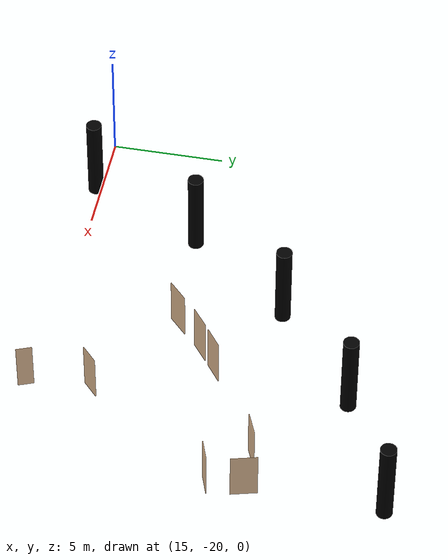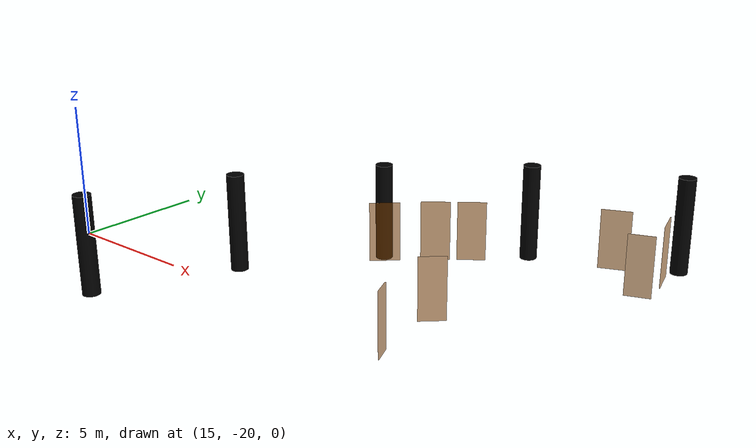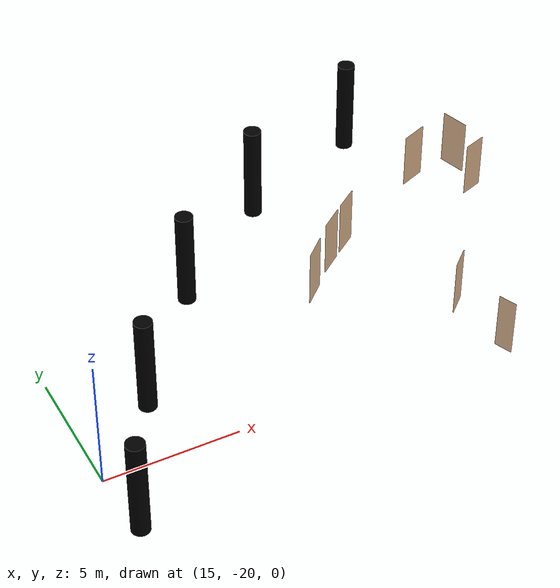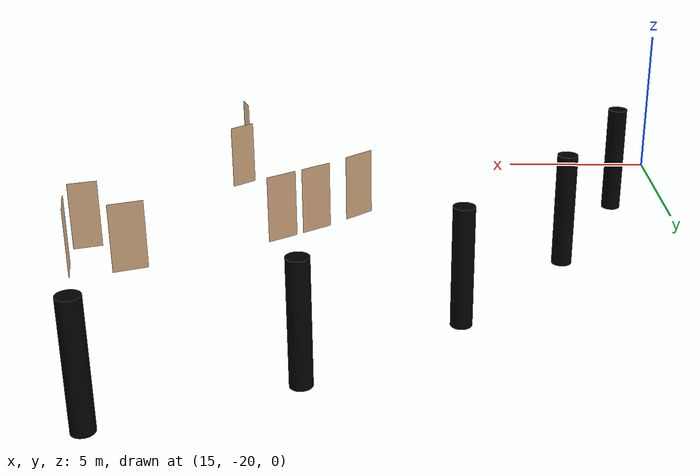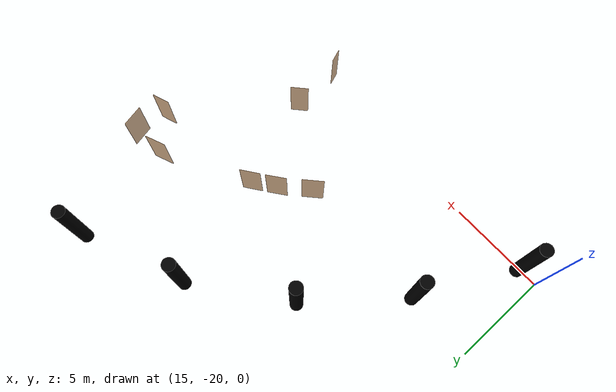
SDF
<sdf version="1.7">
 <world name="world">
  <model name="D25">
   <pose>32.3765 -10.4329 0 0 0 -2.75199</pose>
   <link name="right">
    <pose>0 0 1.11 0 -0 0</pose>
    <visual name="right_visual">
     <geometry><box><size>1.08305 0.03 2.2</size></box></geometry>
     <material><ambient>0.5 0.25 0 0.6</ambient><diffuse>0.5 0.25 0 0.6</diffuse></material>
    </visual>
    <collision name="right_collision">
     <geometry><box><size>1.08305 0.03 2.2</size></box></geometry>
     <surface><contact><collide_bitmask>2</collide_bitmask></contact></surface>
    </collision>
    <inertial>
     <mass>50</mass>
     <inertia><ixx>20.1704</ixx><iyy>25.0542</iyy><izz>4.89127</izz><ixy>0</ixy><ixz>0</ixz><iyz>0</iyz></inertia>
    </inertial>
   </link>
   <joint name="right_joint" type="revolute">
    <parent>world</parent>
    <child>right</child>
    <axis>
     <xyz>0 0 -1</xyz>
     <limit><lower>0</lower><upper>1.57</upper></limit>
     <dynamics><spring_reference>0</spring_reference><spring_stiffness>0</spring_stiffness></dynamics>
    </axis>
    <pose>0.546527 0 0 0 -0 0</pose>
   </joint>
   <plugin name="door_D25" filename="libdoor.so">
    <v_max_door>0.5</v_max_door>
    <a_max_door>0.3</a_max_door>
    <a_nom_door>0.15</a_nom_door>
    <dx_min_door>0.01</dx_min_door>
    <f_max_door>500.0</f_max_door>
    <door name="D25" type="SwingDoor" left_joint_name="empty_joint" right_joint_name="right_joint"/>
   </plugin>
  </model>
  <model name="D26">
   <pose>34.1187 -12.0597 0 0 0 -2.80194</pose>
   <link name="right">
    <pose>0 0 1.11 0 -0 0</pose>
    <visual name="right_visual">
     <geometry><box><size>0.915237 0.03 2.2</size></box></geometry>
     <material><ambient>0.5 0.25 0 0.6</ambient><diffuse>0.5 0.25 0 0.6</diffuse></material>
    </visual>
    <collision name="right_collision">
     <geometry><box><size>0.915237 0.03 2.2</size></box></geometry>
     <surface><contact><collide_bitmask>2</collide_bitmask></contact></surface>
    </collision>
    <inertial>
     <mass>50</mass>
     <inertia><ixx>20.1704</ixx><iyy>23.6569</iyy><izz>3.49399</izz><ixy>0</ixy><ixz>0</ixz><iyz>0</iyz></inertia>
    </inertial>
   </link>
   <joint name="right_joint" type="revolute">
    <parent>world</parent>
    <child>right</child>
    <axis>
     <xyz>0 0 1</xyz>
     <limit><lower>0</lower><upper>1.57</upper></limit>
     <dynamics><spring_reference>0</spring_reference><spring_stiffness>0</spring_stiffness></dynamics>
    </axis>
    <pose>0.462618 0 0 0 -0 0</pose>
   </joint>
   <plugin name="door_D26" filename="libdoor.so">
    <v_max_door>0.5</v_max_door>
    <a_max_door>0.3</a_max_door>
    <a_nom_door>0.15</a_nom_door>
    <dx_min_door>0.01</dx_min_door>
    <f_max_door>500.0</f_max_door>
    <door name="D26" type="SwingDoor" left_joint_name="empty_joint" right_joint_name="right_joint"/>
   </plugin>
  </model>
  <model name="D27">
   <pose>34.2491 -10.3948 0 0 -0 1.83761</pose>
   <link name="right">
    <pose>0 0 1.11 0 -0 0</pose>
    <visual name="right_visual">
     <geometry><box><size>1.1359 0.03 2.2</size></box></geometry>
     <material><ambient>0.5 0.25 0 0.6</ambient><diffuse>0.5 0.25 0 0.6</diffuse></material>
    </visual>
    <collision name="right_collision">
     <geometry><box><size>1.1359 0.03 2.2</size></box></geometry>
     <surface><contact><collide_bitmask>2</collide_bitmask></contact></surface>
    </collision>
    <inertial>
     <mass>50</mass>
     <inertia><ixx>20.1704</ixx><iyy>25.5428</iyy><izz>5.37987</izz><ixy>0</ixy><ixz>0</ixz><iyz>0</iyz></inertia>
    </inertial>
   </link>
   <joint name="right_joint" type="revolute">
    <parent>world</parent>
    <child>right</child>
    <axis>
     <xyz>0 0 1</xyz>
     <limit><lower>0</lower><upper>1.57</upper></limit>
     <dynamics><spring_reference>0</spring_reference><spring_stiffness>0</spring_stiffness></dynamics>
    </axis>
    <pose>0.57295 0 0 0 -0 0</pose>
   </joint>
   <plugin name="door_D27" filename="libdoor.so">
    <v_max_door>0.5</v_max_door>
    <a_max_door>0.3</a_max_door>
    <a_nom_door>0.15</a_nom_door>
    <dx_min_door>0.01</dx_min_door>
    <f_max_door>500.0</f_max_door>
    <door name="D27" type="SwingDoor" left_joint_name="empty_joint" right_joint_name="right_joint"/>
   </plugin>
  </model>
  <model name="D31">
   <pose>27.9754 -12.8885 0 -0 -0 -2.50713</pose>
   <link name="right">
    <pose>0 0 1.11 0 -0 0</pose>
    <visual name="right_visual">
     <geometry><box><size>1.03334 0.03 2.2</size></box></geometry>
     <material><ambient>0.5 0.25 0 0.6</ambient><diffuse>0.5 0.25 0 0.6</diffuse></material>
    </visual>
    <collision name="right_collision">
     <geometry><box><size>1.03334 0.03 2.2</size></box></geometry>
     <surface><contact><collide_bitmask>2</collide_bitmask></contact></surface>
    </collision>
    <inertial>
     <mass>50</mass>
     <inertia><ixx>20.1704</ixx><iyy>24.6158</iyy><izz>4.45285</izz><ixy>0</ixy><ixz>0</ixz><iyz>0</iyz></inertia>
    </inertial>
   </link>
   <joint name="right_joint" type="revolute">
    <parent>world</parent>
    <child>right</child>
    <axis>
     <xyz>0 0 -1</xyz>
     <limit><lower>0</lower><upper>1.57</upper></limit>
     <dynamics><spring_reference>0</spring_reference><spring_stiffness>0</spring_stiffness></dynamics>
    </axis>
    <pose>0.521668 0 0 0 -0 0</pose>
   </joint>
   <plugin name="door_D31" filename="libdoor.so">
    <v_max_door>0.5</v_max_door>
    <a_max_door>0.3</a_max_door>
    <a_nom_door>0.15</a_nom_door>
    <dx_min_door>0.01</dx_min_door>
    <f_max_door>500.0</f_max_door>
    <door name="D31" type="SwingDoor" left_joint_name="empty_joint" right_joint_name="right_joint"/>
   </plugin>
  </model>
  <model name="D32">
   <pose>26.9386 -13.6668 0 0 -0 -2.48438</pose>
   <link name="right">
    <pose>0 0 1.11 0 -0 0</pose>
    <visual name="right_visual">
     <geometry><box><size>1.05854 0.03 2.2</size></box></geometry>
     <material><ambient>0.5 0.25 0 0.6</ambient><diffuse>0.5 0.25 0 0.6</diffuse></material>
    </visual>
    <collision name="right_collision">
     <geometry><box><size>1.05854 0.03 2.2</size></box></geometry>
     <surface><contact><collide_bitmask>2</collide_bitmask></contact></surface>
    </collision>
    <inertial>
     <mass>50</mass>
     <inertia><ixx>20.1704</ixx><iyy>24.8354</iyy><izz>4.67253</izz><ixy>0</ixy><ixz>0</ixz><iyz>0</iyz></inertia>
    </inertial>
   </link>
   <joint name="right_joint" type="revolute">
    <parent>world</parent>
    <child>right</child>
    <axis>
     <xyz>0 0 1</xyz>
     <limit><lower>0</lower><upper>1.57</upper></limit>
     <dynamics><spring_reference>0</spring_reference><spring_stiffness>0</spring_stiffness></dynamics>
    </axis>
    <pose>0.53427 0 0 0 -0 0</pose>
   </joint>
   <plugin name="door_D32" filename="libdoor.so">
    <v_max_door>0.5</v_max_door>
    <a_max_door>0.3</a_max_door>
    <a_nom_door>0.15</a_nom_door>
    <dx_min_door>0.01</dx_min_door>
    <f_max_door>500.0</f_max_door>
    <door name="D32" type="SwingDoor" left_joint_name="empty_joint" right_joint_name="right_joint"/>
   </plugin>
  </model>
  <model name="D33">
   <pose>25.5963 -14.8888 -0 0 -0 0.750934</pose>
   <link name="right">
    <pose>0 0 1.11 0 -0 0</pose>
    <visual name="right_visual">
     <geometry><box><size>1.09741 0.03 2.2</size></box></geometry>
     <material><ambient>0.5 0.25 0 0.6</ambient><diffuse>0.5 0.25 0 0.6</diffuse></material>
    </visual>
    <collision name="right_collision">
     <geometry><box><size>1.09741 0.03 2.2</size></box></geometry>
     <surface><contact><collide_bitmask>2</collide_bitmask></contact></surface>
    </collision>
    <inertial>
     <mass>50</mass>
     <inertia><ixx>20.1704</ixx><iyy>25.1846</iyy><izz>5.02167</izz><ixy>0</ixy><ixz>0</ixz><iyz>0</iyz></inertia>
    </inertial>
   </link>
   <joint name="right_joint" type="revolute">
    <parent>world</parent>
    <child>right</child>
    <axis>
     <xyz>0 0 1</xyz>
     <limit><lower>0</lower><upper>1.57</upper></limit>
     <dynamics><spring_reference>0</spring_reference><spring_stiffness>0</spring_stiffness></dynamics>
    </axis>
    <pose>0.553703 0 0 0 -0 0</pose>
   </joint>
   <plugin name="door_D33" filename="libdoor.so">
    <v_max_door>0.5</v_max_door>
    <a_max_door>0.3</a_max_door>
    <a_nom_door>0.15</a_nom_door>
    <dx_min_door>0.01</dx_min_door>
    <f_max_door>500.0</f_max_door>
    <door name="D33" type="SwingDoor" left_joint_name="empty_joint" right_joint_name="right_joint"/>
   </plugin>
  </model>
  <model name="D34">
   <pose>29.9039 -17.792 0 0 0 -2.39809</pose>
   <link name="right">
    <pose>0 0 1.11 0 -0 0</pose>
    <visual name="right_visual">
     <geometry><box><size>0.925938 0.03 2.2</size></box></geometry>
     <material><ambient>0.5 0.25 0 0.6</ambient><diffuse>0.5 0.25 0 0.6</diffuse></material>
    </visual>
    <collision name="right_collision">
     <geometry><box><size>0.925938 0.03 2.2</size></box></geometry>
     <surface><contact><collide_bitmask>2</collide_bitmask></contact></surface>
    </collision>
    <inertial>
     <mass>50</mass>
     <inertia><ixx>20.1704</ixx><iyy>23.739</iyy><izz>3.57609</izz><ixy>0</ixy><ixz>0</ixz><iyz>0</iyz></inertia>
    </inertial>
   </link>
   <joint name="right_joint" type="revolute">
    <parent>world</parent>
    <child>right</child>
    <axis>
     <xyz>0 0 1</xyz>
     <limit><lower>0</lower><upper>1.57</upper></limit>
     <dynamics><spring_reference>0</spring_reference><spring_stiffness>0</spring_stiffness></dynamics>
    </axis>
    <pose>0.467969 0 0 0 -0 0</pose>
   </joint>
   <plugin name="door_D34" filename="libdoor.so">
    <v_max_door>0.5</v_max_door>
    <a_max_door>0.3</a_max_door>
    <a_nom_door>0.15</a_nom_door>
    <dx_min_door>0.01</dx_min_door>
    <f_max_door>500.0</f_max_door>
    <door name="D34" type="SwingDoor" left_joint_name="empty_joint" right_joint_name="right_joint"/>
   </plugin>
  </model>
  <model name="D36">
   <pose>30.1255 -20.5368 0 0 0 -1.19026</pose>
   <link name="right">
    <pose>0 0 1.11 0 -0 0</pose>
    <visual name="right_visual">
     <geometry><box><size>0.694175 0.03 2.2</size></box></geometry>
     <material><ambient>0.5 0.25 0 0.6</ambient><diffuse>0.5 0.25 0 0.6</diffuse></material>
    </visual>
    <collision name="right_collision">
     <geometry><box><size>0.694175 0.03 2.2</size></box></geometry>
     <surface><contact><collide_bitmask>2</collide_bitmask></contact></surface>
    </collision>
    <inertial>
     <mass>50</mass>
     <inertia><ixx>20.1704</ixx><iyy>22.1745</iyy><izz>2.01158</izz><ixy>0</ixy><ixz>0</ixz><iyz>0</iyz></inertia>
    </inertial>
   </link>
   <joint name="right_joint" type="revolute">
    <parent>world</parent>
    <child>right</child>
    <axis>
     <xyz>0 0 -1</xyz>
     <limit><lower>0</lower><upper>1.57</upper></limit>
     <dynamics><spring_reference>0</spring_reference><spring_stiffness>0</spring_stiffness></dynamics>
    </axis>
    <pose>0.352087 0 0 0 -0 0</pose>
   </joint>
   <plugin name="door_D36" filename="libdoor.so">
    <v_max_door>0.5</v_max_door>
    <a_max_door>0.3</a_max_door>
    <a_nom_door>0.15</a_nom_door>
    <dx_min_door>0.01</dx_min_door>
    <f_max_door>500.0</f_max_door>
    <door name="D36" type="SwingDoor" left_joint_name="empty_joint" right_joint_name="right_joint"/>
   </plugin>
  </model>
  <model name="CylinderBlock_24">
   <link name="link">
    <inertial>
     <mass>1</mass>
     <inertia><ixx>1</ixx><ixy>0</ixy><ixz>0</ixz><iyy>1</iyy><iyz>0</iyz><izz>1</izz></inertia>
    </inertial>
    <visual name="visual">
     <geometry><cylinder><radius>0.35</radius><length>4.0</length></cylinder></geometry>
     <material>
      <shader type="pixel"><normal_map>__default__</normal_map></shader>
      <script><name>ModelPreview_1::link::visual_MATERIAL_</name><uri>__default__</uri></script>
      <ambient>0 0 0 1</ambient>
      <diffuse>0 0 0 1</diffuse>
      <specular>0 0 0 1</specular>
      <emissive>0 0 0 1</emissive>
     </material>
    </visual>
    <collision name="collision">
     <geometry><cylinder><radius>0.35</radius><length>4.0</length></cylinder></geometry>
     <surface>
      <friction>
       <ode><mu>1</mu><mu2>1</mu2><fdir1>0 0 0</fdir1><slip1>0</slip1><slip2>0</slip2></ode>
       <torsional>
        <coefficient>1</coefficient>
        <patch_radius>0</patch_radius>
        <surface_radius>0</surface_radius>
        <use_patch_radius>1</use_patch_radius>
        <ode><slip>0</slip></ode>
       </torsional>
      </friction>
      <bounce><restitution_coefficient>0</restitution_coefficient><threshold>1e+06</threshold></bounce>
      <contact>
       <collide_without_contact>0</collide_without_contact>
       <collide_without_contact_bitmask>1</collide_without_contact_bitmask>
       <collide_bitmask>1</collide_bitmask>
       <ode>
        <soft_cfm>0</soft_cfm>
        <soft_erp>0.2</soft_erp>
        <kp>1e+13</kp>
        <kd>1</kd>
        <max_vel>0.01</max_vel>
        <min_depth>0</min_depth>
       </ode>
       <bullet>
        <split_impulse>1</split_impulse>
        <split_impulse_penetration_threshold>-0.01</split_impulse_penetration_threshold>
        <soft_cfm>0</soft_cfm>
        <soft_erp>0.2</soft_erp>
        <kp>1e+13</kp>
        <kd>1</kd>
       </bullet>
      </contact>
     </surface>
    </collision>
   </link>
   <static>1</static>
   <pose>32.4854 -4.77215 0 0 -0 0</pose>
  </model>
  <model name="CylinderBlock_25">
   <link name="link">
    <inertial>
     <mass>1</mass>
     <inertia><ixx>1</ixx><ixy>0</ixy><ixz>0</ixz><iyy>1</iyy><iyz>0</iyz><izz>1</izz></inertia>
    </inertial>
    <visual name="visual">
     <geometry><cylinder><radius>0.35</radius><length>4.0</length></cylinder></geometry>
     <material>
      <shader type="pixel"><normal_map>__default__</normal_map></shader>
      <script><name>ModelPreview_1::link::visual_MATERIAL_</name><uri>__default__</uri></script>
      <ambient>0 0 0 1</ambient>
      <diffuse>0 0 0 1</diffuse>
      <specular>0 0 0 1</specular>
      <emissive>0 0 0 1</emissive>
     </material>
    </visual>
    <collision name="collision">
     <geometry><cylinder><radius>0.35</radius><length>4.0</length></cylinder></geometry>
     <surface>
      <friction>
       <ode><mu>1</mu><mu2>1</mu2><fdir1>0 0 0</fdir1><slip1>0</slip1><slip2>0</slip2></ode>
       <torsional>
        <coefficient>1</coefficient>
        <patch_radius>0</patch_radius>
        <surface_radius>0</surface_radius>
        <use_patch_radius>1</use_patch_radius>
        <ode><slip>0</slip></ode>
       </torsional>
      </friction>
      <bounce><restitution_coefficient>0</restitution_coefficient><threshold>1e+06</threshold></bounce>
      <contact>
       <collide_without_contact>0</collide_without_contact>
       <collide_without_contact_bitmask>1</collide_without_contact_bitmask>
       <collide_bitmask>1</collide_bitmask>
       <ode>
        <soft_cfm>0</soft_cfm>
        <soft_erp>0.2</soft_erp>
        <kp>1e+13</kp>
        <kd>1</kd>
        <max_vel>0.01</max_vel>
        <min_depth>0</min_depth>
       </ode>
       <bullet>
        <split_impulse>1</split_impulse>
        <split_impulse_penetration_threshold>-0.01</split_impulse_penetration_threshold>
        <soft_cfm>0</soft_cfm>
        <soft_erp>0.2</soft_erp>
        <kp>1e+13</kp>
        <kd>1</kd>
       </bullet>
      </contact>
     </surface>
    </collision>
   </link>
   <static>1</static>
   <pose>26.9406 -7.17598 0 0 -0 0</pose>
  </model>
  <model name="CylinderBlock_26">
   <link name="link">
    <inertial>
     <mass>1</mass>
     <inertia><ixx>1</ixx><ixy>0</ixy><ixz>0</ixz><iyy>1</iyy><iyz>0</iyz><izz>1</izz></inertia>
    </inertial>
    <visual name="visual">
     <geometry><cylinder><radius>0.35</radius><length>4.0</length></cylinder></geometry>
     <material>
      <shader type="pixel"><normal_map>__default__</normal_map></shader>
      <script><name>ModelPreview_1::link::visual_MATERIAL_</name><uri>__default__</uri></script>
      <ambient>0 0 0 1</ambient>
      <diffuse>0 0 0 1</diffuse>
      <specular>0 0 0 1</specular>
      <emissive>0 0 0 1</emissive>
     </material>
    </visual>
    <collision name="collision">
     <geometry><cylinder><radius>0.35</radius><length>4.0</length></cylinder></geometry>
     <surface>
      <friction>
       <ode><mu>1</mu><mu2>1</mu2><fdir1>0 0 0</fdir1><slip1>0</slip1><slip2>0</slip2></ode>
       <torsional>
        <coefficient>1</coefficient>
        <patch_radius>0</patch_radius>
        <surface_radius>0</surface_radius>
        <use_patch_radius>1</use_patch_radius>
        <ode><slip>0</slip></ode>
       </torsional>
      </friction>
      <bounce><restitution_coefficient>0</restitution_coefficient><threshold>1e+06</threshold></bounce>
      <contact>
       <collide_without_contact>0</collide_without_contact>
       <collide_without_contact_bitmask>1</collide_without_contact_bitmask>
       <collide_bitmask>1</collide_bitmask>
       <ode>
        <soft_cfm>0</soft_cfm>
        <soft_erp>0.2</soft_erp>
        <kp>1e+13</kp>
        <kd>1</kd>
        <max_vel>0.01</max_vel>
        <min_depth>0</min_depth>
       </ode>
       <bullet>
        <split_impulse>1</split_impulse>
        <split_impulse_penetration_threshold>-0.01</split_impulse_penetration_threshold>
        <soft_cfm>0</soft_cfm>
        <soft_erp>0.2</soft_erp>
        <kp>1e+13</kp>
        <kd>1</kd>
       </bullet>
      </contact>
     </surface>
    </collision>
   </link>
   <static>1</static>
   <pose>22.2541 -10.8598 0 0 -0 0</pose>
  </model>
  <model name="CylinderBlock_27">
   <link name="link">
    <inertial>
     <mass>1</mass>
     <inertia><ixx>1</ixx><ixy>0</ixy><ixz>0</ixz><iyy>1</iyy><iyz>0</iyz><izz>1</izz></inertia>
    </inertial>
    <visual name="visual">
     <geometry><cylinder><radius>0.35</radius><length>4.0</length></cylinder></geometry>
     <material>
      <shader type="pixel"><normal_map>__default__</normal_map></shader>
      <script><name>ModelPreview_1::link::visual_MATERIAL_</name><uri>__default__</uri></script>
      <ambient>0 0 0 1</ambient>
      <diffuse>0 0 0 1</diffuse>
      <specular>0 0 0 1</specular>
      <emissive>0 0 0 1</emissive>
     </material>
    </visual>
    <collision name="collision">
     <geometry><cylinder><radius>0.35</radius><length>4.0</length></cylinder></geometry>
     <surface>
      <friction>
       <ode><mu>1</mu><mu2>1</mu2><fdir1>0 0 0</fdir1><slip1>0</slip1><slip2>0</slip2></ode>
       <torsional>
        <coefficient>1</coefficient>
        <patch_radius>0</patch_radius>
        <surface_radius>0</surface_radius>
        <use_patch_radius>1</use_patch_radius>
        <ode><slip>0</slip></ode>
       </torsional>
      </friction>
      <bounce><restitution_coefficient>0</restitution_coefficient><threshold>1e+06</threshold></bounce>
      <contact>
       <collide_without_contact>0</collide_without_contact>
       <collide_without_contact_bitmask>1</collide_without_contact_bitmask>
       <collide_bitmask>1</collide_bitmask>
       <ode>
        <soft_cfm>0</soft_cfm>
        <soft_erp>0.2</soft_erp>
        <kp>1e+13</kp>
        <kd>1</kd>
        <max_vel>0.01</max_vel>
        <min_depth>0</min_depth>
       </ode>
       <bullet>
        <split_impulse>1</split_impulse>
        <split_impulse_penetration_threshold>-0.01</split_impulse_penetration_threshold>
        <soft_cfm>0</soft_cfm>
        <soft_erp>0.2</soft_erp>
        <kp>1e+13</kp>
        <kd>1</kd>
       </bullet>
      </contact>
     </surface>
    </collision>
   </link>
   <static>1</static>
   <pose>18.5254 -15.5243 0 0 -0 0</pose>
  </model>
  <model name="CylinderBlock_28">
   <link name="link">
    <inertial>
     <mass>1</mass>
     <inertia><ixx>1</ixx><ixy>0</ixy><ixz>0</ixz><iyy>1</iyy><iyz>0</iyz><izz>1</izz></inertia>
    </inertial>
    <visual name="visual">
     <geometry><cylinder><radius>0.35</radius><length>4.0</length></cylinder></geometry>
     <material>
      <shader type="pixel"><normal_map>__default__</normal_map></shader>
      <script><name>ModelPreview_1::link::visual_MATERIAL_</name><uri>__default__</uri></script>
      <ambient>0 0 0 1</ambient>
      <diffuse>0 0 0 1</diffuse>
      <specular>0 0 0 1</specular>
      <emissive>0 0 0 1</emissive>
     </material>
    </visual>
    <collision name="collision">
     <geometry><cylinder><radius>0.35</radius><length>4.0</length></cylinder></geometry>
     <surface>
      <friction>
       <ode><mu>1</mu><mu2>1</mu2><fdir1>0 0 0</fdir1><slip1>0</slip1><slip2>0</slip2></ode>
       <torsional>
        <coefficient>1</coefficient>
        <patch_radius>0</patch_radius>
        <surface_radius>0</surface_radius>
        <use_patch_radius>1</use_patch_radius>
        <ode><slip>0</slip></ode>
       </torsional>
      </friction>
      <bounce><restitution_coefficient>0</restitution_coefficient><threshold>1e+06</threshold></bounce>
      <contact>
       <collide_without_contact>0</collide_without_contact>
       <collide_without_contact_bitmask>1</collide_without_contact_bitmask>
       <collide_bitmask>1</collide_bitmask>
       <ode>
        <soft_cfm>0</soft_cfm>
        <soft_erp>0.2</soft_erp>
        <kp>1e+13</kp>
        <kd>1</kd>
        <max_vel>0.01</max_vel>
        <min_depth>0</min_depth>
       </ode>
       <bullet>
        <split_impulse>1</split_impulse>
        <split_impulse_penetration_threshold>-0.01</split_impulse_penetration_threshold>
        <soft_cfm>0</soft_cfm>
        <soft_erp>0.2</soft_erp>
        <kp>1e+13</kp>
        <kd>1</kd>
       </bullet>
      </contact>
     </surface>
    </collision>
   </link>
   <static>1</static>
   <pose>15.9143 -20.7626 0 0 -0 0</pose>
  </model>
 </world>
</sdf>
